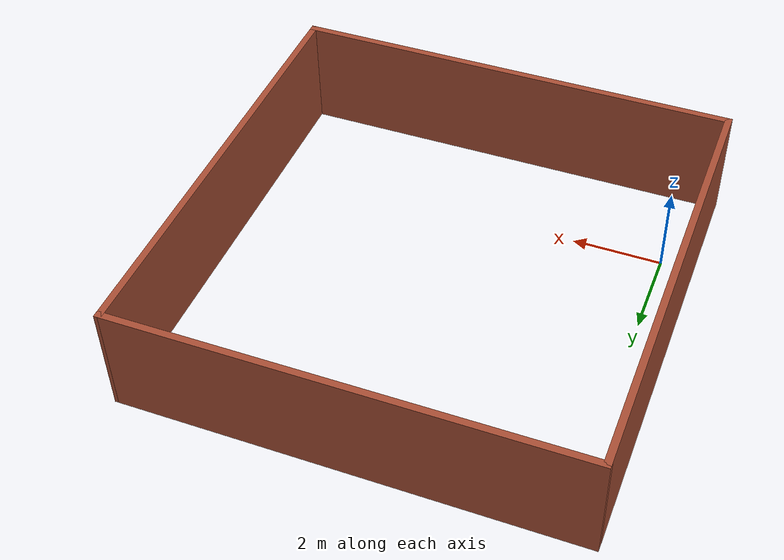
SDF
<?xml version='1.0'?>
<sdf version='1.7'>
  <model name='square_arena'>
    <pose>4.27632 2.66249 0 0 -0 0</pose>
    <link name='Wall_0'>
      <collision name='Wall_0_Collision'>
        <geometry>
          <box>
            <size>10 0.15 2.5</size>
          </box>
        </geometry>
        <pose>0 0 1.25 0 -0 0</pose>
      </collision>
      <visual name='Wall_0_Visual'>
        <pose>0 0 1.25 0 -0 0</pose>
        <geometry>
          <box>
            <size>10 0.15 2.5</size>
          </box>
        </geometry>
        <material>
          <script>
            <uri>file://media/materials/scripts/gazebo.material</uri>
            <name>Gazebo/Bricks</name>
          </script>
          <ambient>1 1 1 1</ambient>
        </material>
        <meta>
          <layer>0</layer>
        </meta>
      </visual>
      <pose>0.008679 -4.925 0 0 -0 0</pose>
    </link>
    <link name='Wall_1'>
      <collision name='Wall_1_Collision'>
        <geometry>
          <box>
            <size>10 0.15 2.5</size>
          </box>
        </geometry>
        <pose>0 0 1.25 0 -0 0</pose>
      </collision>
      <visual name='Wall_1_Visual'>
        <pose>0 0 1.25 0 -0 0</pose>
        <geometry>
          <box>
            <size>10 0.15 2.5</size>
          </box>
        </geometry>
        <material>
          <script>
            <uri>file://media/materials/scripts/gazebo.material</uri>
            <name>Gazebo/Bricks</name>
          </script>
          <ambient>1 1 1 1</ambient>
        </material>
        <meta>
          <layer>0</layer>
        </meta>
      </visual>
      <pose>4.92493 0 0 0 -0 1.57257</pose>
    </link>
    <link name='Wall_2'>
      <collision name='Wall_2_Collision'>
        <geometry>
          <box>
            <size>10 0.15 2.5</size>
          </box>
        </geometry>
        <pose>0 0 1.25 0 -0 0</pose>
      </collision>
      <visual name='Wall_2_Visual'>
        <pose>0 0 1.25 0 -0 0</pose>
        <geometry>
          <box>
            <size>10 0.15 2.5</size>
          </box>
        </geometry>
        <material>
          <script>
            <uri>file://media/materials/scripts/gazebo.material</uri>
            <name>Gazebo/Bricks</name>
          </script>
          <ambient>1 1 1 1</ambient>
        </material>
        <meta>
          <layer>0</layer>
        </meta>
      </visual>
      <pose>-0.008811 4.925 0 0 -0 3.14159</pose>
    </link>
    <link name='Wall_3'>
      <collision name='Wall_3_Collision'>
        <geometry>
          <box>
            <size>10 0.15 2.5</size>
          </box>
        </geometry>
        <pose>0 0 1.25 0 -0 0</pose>
      </collision>
      <visual name='Wall_3_Visual'>
        <pose>0 0 1.25 0 -0 0</pose>
        <geometry>
          <box>
            <size>10 0.15 2.5</size>
          </box>
        </geometry>
        <material>
          <script>
            <uri>file://media/materials/scripts/gazebo.material</uri>
            <name>Gazebo/Bricks</name>
          </script>
          <ambient>1 1 1 1</ambient>
        </material>
        <meta>
          <layer>0</layer>
        </meta>
      </visual>
      <pose>-4.93381 0 0 0 -0 -1.5708</pose>
    </link>
    <static>1</static>
  </model>
</sdf>
